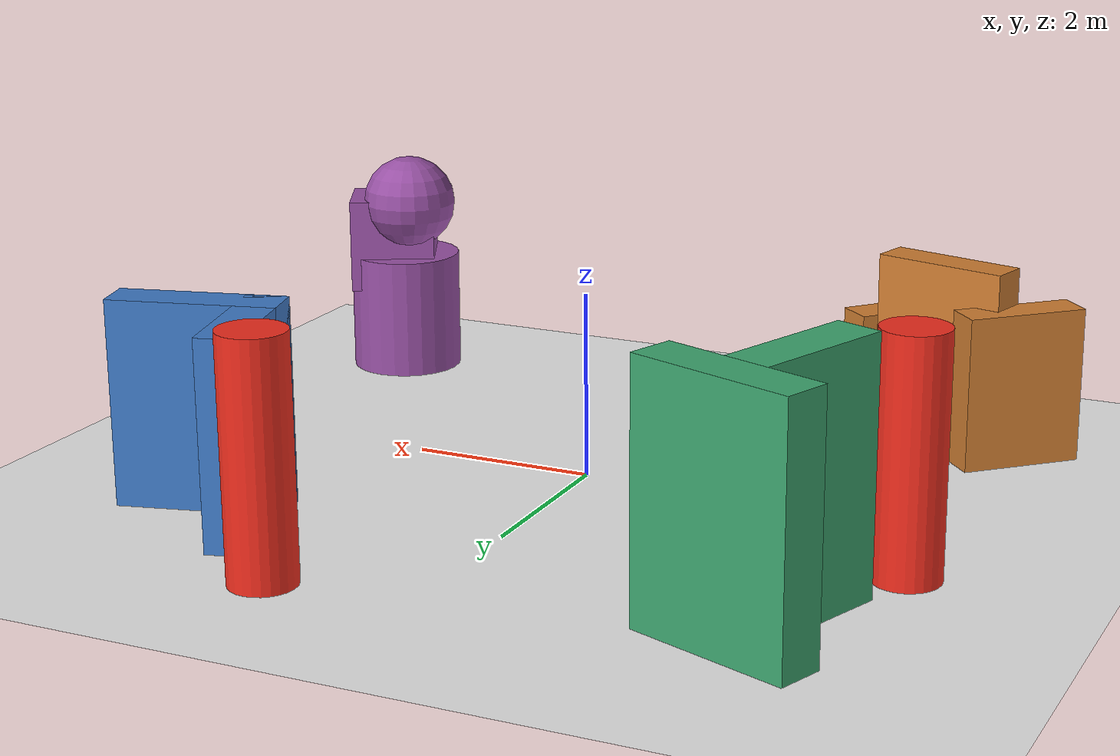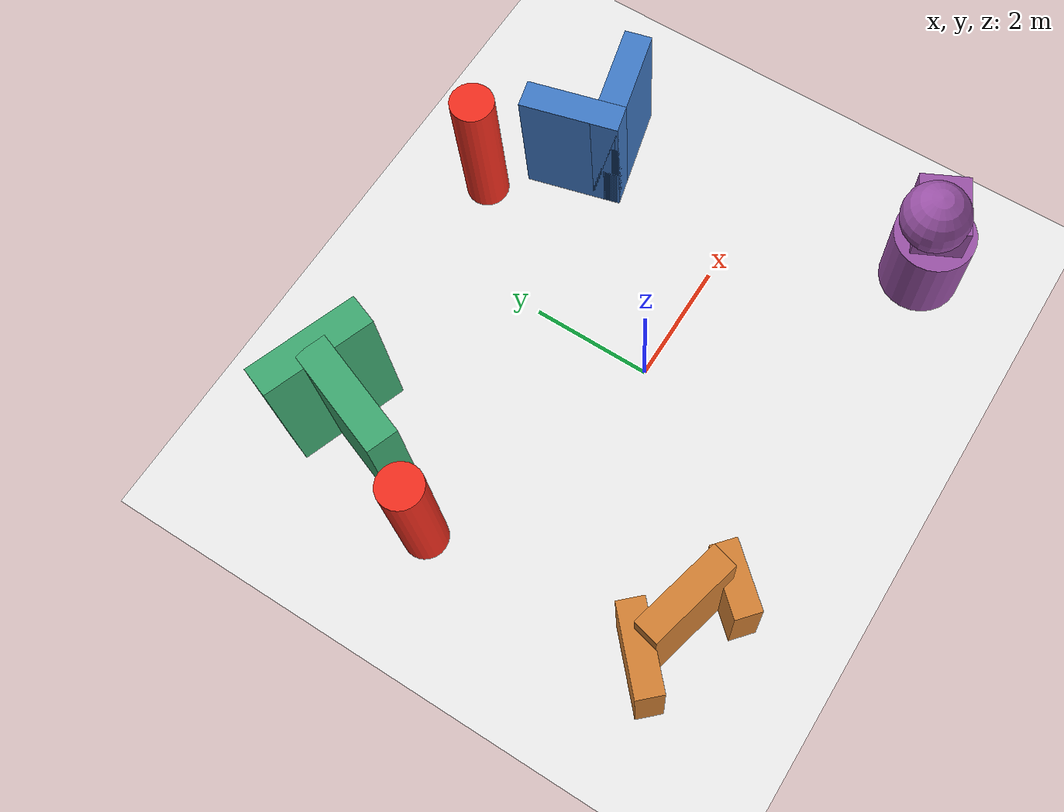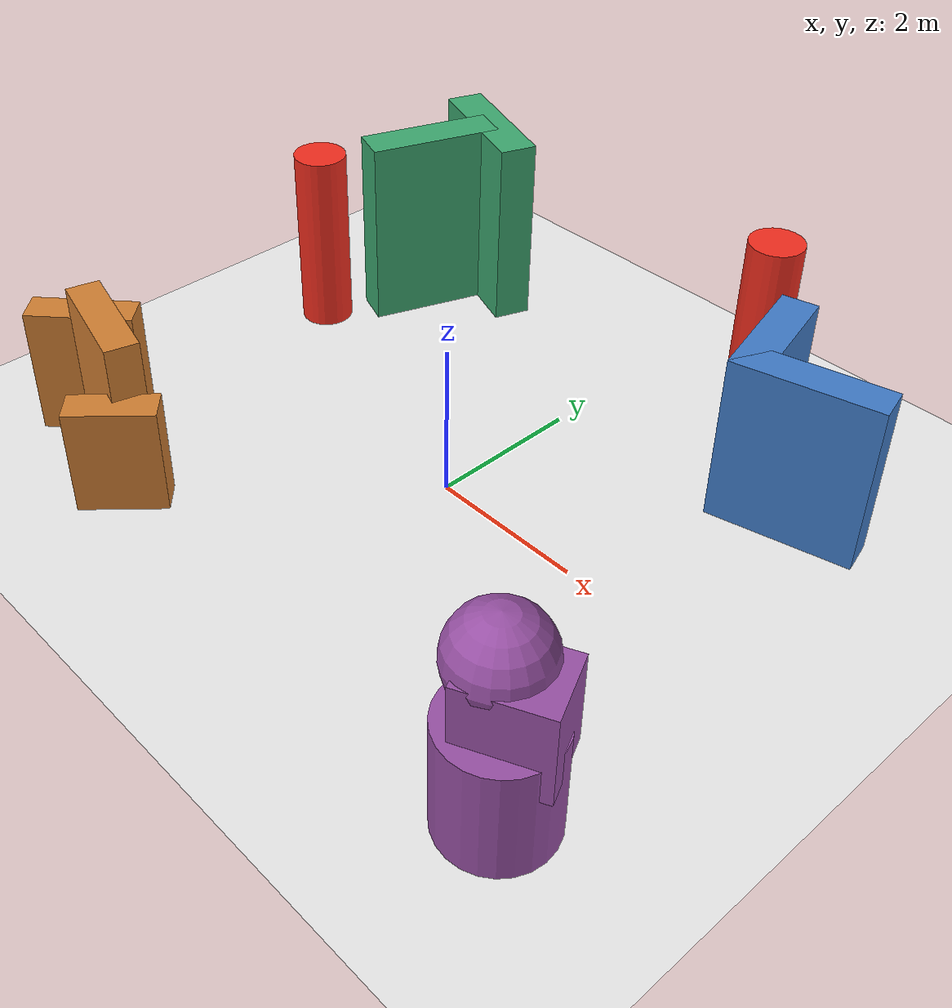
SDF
<?xml version="1.0"?>
<sdf version="1.6">
  <world name="p450_sparse_dynamic_white">
    <gravity>0 0 -9.8</gravity>
    <magnetic_field>6e-06 2.3e-05 -4.2e-05</magnetic_field>
    <atmosphere type="adiabatic"/>

    <physics name="default_physics" type="ode">
      <max_step_size>0.001</max_step_size>
      <real_time_factor>1.0</real_time_factor>
      <real_time_update_rate>1000</real_time_update_rate>
    </physics>

    <scene>
      <ambient>0.75 0.75 0.75 1</ambient>
      <background>0.92 0.95 1.0 1</background>
      <shadows>true</shadows>
    </scene>

    <light name="sun" type="directional">
      <cast_shadows>true</cast_shadows>
      <pose>0 0 12 0 0 0</pose>
      <diffuse>0.9 0.9 0.9 1</diffuse>
      <specular>0.2 0.2 0.2 1</specular>
      <attenuation>
        <range>1000</range>
        <constant>0.9</constant>
        <linear>0.01</linear>
        <quadratic>0.001</quadratic>
      </attenuation>
      <direction>-0.4 0.2 -0.9</direction>
    </light>

    <!-- 纯白图片材质地面，无网格和花纹。 -->
    <include>
      <uri>model://p450_white_ground</uri>
      <name>p450_white_ground</name>
      <pose>0 0 0 0 0 0</pose>
    </include>

    <!-- 四个复合几何体组成的稀疏不规则静态障碍物。 -->
    <include>
      <uri>model://p450_irregular_obstacles</uri>
      <name>p450_irregular_obstacles</name>
      <pose>0 0 0 0 0 0</pose>
    </include>

    <!-- 初始位姿与运动控制节点 t=0 时保持一致。 -->
    <include>
      <uri>model://p450_reciprocating_cylinder</uri>
      <name>dynamic_cylinder_x</name>
      <pose>1.5 4.0 0 0 0 0</pose>
    </include>
    <include>
      <uri>model://p450_reciprocating_cylinder</uri>
      <name>dynamic_cylinder_y</name>
      <pose>-4.0 1.4 0 0 0 0</pose>
    </include>

    <wind/>
    <spherical_coordinates>
      <surface_model>EARTH_WGS84</surface_model>
      <latitude_deg>0</latitude_deg>
      <longitude_deg>0</longitude_deg>
      <elevation>0</elevation>
      <heading_deg>0</heading_deg>
    </spherical_coordinates>

    <gui fullscreen="false">
      <camera name="overview">
        <pose>11 -13 11 0 0.55 2.35</pose>
        <view_controller>orbit</view_controller>
      </camera>
    </gui>
  </world>
</sdf>

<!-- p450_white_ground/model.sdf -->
<sdf version="1.6">
  <model name="p450_white_ground">
    <static>true</static>
    <link name="ground_link">
      <collision name="ground_collision">
        <geometry>
          <plane>
            <normal>0 0 1</normal>
            <size>40 40</size>
          </plane>
        </geometry>
        <surface>
          <contact>
            <collide_bitmask>65535</collide_bitmask>
            <ode/>
          </contact>
          <friction>
            <ode>
              <mu>100</mu>
              <mu2>50</mu2>
            </ode>
          </friction>
        </surface>
      </collision>
      <visual name="ground_visual">
        <cast_shadows>false</cast_shadows>
        <geometry>
          <plane>
            <normal>0 0 1</normal>
            <size>40 40</size>
          </plane>
        </geometry>
        <material>
          <script>
            <uri>model://p450_white_ground/materials/scripts</uri>
            <uri>model://p450_white_ground/materials/textures</uri>
            <name>P450/PlainWhiteGround</name>
          </script>
        </material>
      </visual>
    </link>
  </model>
</sdf>

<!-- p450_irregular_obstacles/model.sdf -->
<sdf version="1.6">
  <model name="p450_irregular_obstacles">
    <static>true</static>

    <!-- 东北侧：L 形高障碍物。 -->
    <link name="l_shape">
      <pose>3.2 2.4 0 0 0 0.25</pose>
      <collision name="long_collision">
        <pose>0 0 1.1 0 0 0</pose>
        <geometry><box><size>1.8 0.45 2.2</size></box></geometry>
      </collision>
      <collision name="short_collision">
        <pose>-0.675 0.575 1.1 0 0 0</pose>
        <geometry><box><size>0.45 1.6 2.2</size></box></geometry>
      </collision>
      <visual name="long_visual">
        <pose>0 0 1.1 0 0 0</pose>
        <geometry><box><size>1.8 0.45 2.2</size></box></geometry>
        <material>
          <ambient>0.20 0.38 0.62 1</ambient>
          <diffuse>0.25 0.48 0.78 1</diffuse>
        </material>
      </visual>
      <visual name="short_visual">
        <pose>-0.675 0.575 1.1 0 0 0</pose>
        <geometry><box><size>0.45 1.6 2.2</size></box></geometry>
        <material>
          <ambient>0.20 0.38 0.62 1</ambient>
          <diffuse>0.25 0.48 0.78 1</diffuse>
        </material>
      </visual>
    </link>

    <!-- 西北侧：旋转的 T 形障碍物。 -->
    <link name="t_shape">
      <pose>-3.2 3.1 0 0 0 -0.35</pose>
      <collision name="stem_collision">
        <pose>0 -0.35 1.3 0 0 0</pose>
        <geometry><box><size>0.5 1.8 2.6</size></box></geometry>
      </collision>
      <collision name="cap_collision">
        <pose>0 0.55 1.3 0 0 0</pose>
        <geometry><box><size>1.8 0.5 2.6</size></box></geometry>
      </collision>
      <visual name="stem_visual">
        <pose>0 -0.35 1.3 0 0 0</pose>
        <geometry><box><size>0.5 1.8 2.6</size></box></geometry>
        <material>
          <ambient>0.20 0.52 0.36 1</ambient>
          <diffuse>0.24 0.66 0.44 1</diffuse>
        </material>
      </visual>
      <visual name="cap_visual">
        <pose>0 0.55 1.3 0 0 0</pose>
        <geometry><box><size>1.8 0.5 2.6</size></box></geometry>
        <material>
          <ambient>0.20 0.52 0.36 1</ambient>
          <diffuse>0.24 0.66 0.44 1</diffuse>
        </material>
      </visual>
    </link>

    <!-- 西南侧：三段高度不同的折线障碍物。 -->
    <link name="zigzag_shape">
      <pose>-3.4 -2.6 0 0 0 0.2</pose>
      <collision name="segment_a_collision">
        <pose>-0.55 0.35 0.85 0 0 0.55</pose>
        <geometry><box><size>1.35 0.42 1.7</size></box></geometry>
      </collision>
      <collision name="segment_b_collision">
        <pose>0.25 0 1.05 0 0 -0.45</pose>
        <geometry><box><size>1.5 0.42 2.1</size></box></geometry>
      </collision>
      <collision name="segment_c_collision">
        <pose>0.85 -0.55 0.7 0 0 0.65</pose>
        <geometry><box><size>1.1 0.42 1.4</size></box></geometry>
      </collision>
      <visual name="segment_a_visual">
        <pose>-0.55 0.35 0.85 0 0 0.55</pose>
        <geometry><box><size>1.35 0.42 1.7</size></box></geometry>
        <material>
          <ambient>0.62 0.38 0.16 1</ambient>
          <diffuse>0.82 0.50 0.20 1</diffuse>
        </material>
      </visual>
      <visual name="segment_b_visual">
        <pose>0.25 0 1.05 0 0 -0.45</pose>
        <geometry><box><size>1.5 0.42 2.1</size></box></geometry>
        <material>
          <ambient>0.62 0.38 0.16 1</ambient>
          <diffuse>0.82 0.50 0.20 1</diffuse>
        </material>
      </visual>
      <visual name="segment_c_visual">
        <pose>0.85 -0.55 0.7 0 0 0.65</pose>
        <geometry><box><size>1.1 0.42 1.4</size></box></geometry>
        <material>
          <ambient>0.62 0.38 0.16 1</ambient>
          <diffuse>0.82 0.50 0.20 1</diffuse>
        </material>
      </visual>
    </link>

    <!-- 东南侧：圆柱、斜方体和球体叠成的不规则障碍物。 -->
    <link name="rock_shape">
      <pose>3.8 -2.9 0 0 0 0</pose>
      <collision name="base_collision">
        <pose>0 0 0.7 0 0 0</pose>
        <geometry><cylinder><radius>0.65</radius><length>1.4</length></cylinder></geometry>
      </collision>
      <collision name="middle_collision">
        <pose>0.12 0.05 1.55 0 0 0.45</pose>
        <geometry><box><size>1.0 0.8 1.1</size></box></geometry>
      </collision>
      <collision name="top_collision">
        <pose>-0.12 0.08 2.05 0 0 0</pose>
        <geometry><sphere><radius>0.55</radius></sphere></geometry>
      </collision>
      <visual name="base_visual">
        <pose>0 0 0.7 0 0 0</pose>
        <geometry><cylinder><radius>0.65</radius><length>1.4</length></cylinder></geometry>
        <material>
          <ambient>0.45 0.24 0.48 1</ambient>
          <diffuse>0.60 0.32 0.65 1</diffuse>
        </material>
      </visual>
      <visual name="middle_visual">
        <pose>0.12 0.05 1.55 0 0 0.45</pose>
        <geometry><box><size>1.0 0.8 1.1</size></box></geometry>
        <material>
          <ambient>0.45 0.24 0.48 1</ambient>
          <diffuse>0.60 0.32 0.65 1</diffuse>
        </material>
      </visual>
      <visual name="top_visual">
        <pose>-0.12 0.08 2.05 0 0 0</pose>
        <geometry><sphere><radius>0.55</radius></sphere></geometry>
        <material>
          <ambient>0.45 0.24 0.48 1</ambient>
          <diffuse>0.60 0.32 0.65 1</diffuse>
        </material>
      </visual>
    </link>
  </model>
</sdf>

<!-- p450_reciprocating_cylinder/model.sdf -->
<sdf version="1.6">
  <model name="p450_reciprocating_cylinder">
    <static>false</static>
    <allow_auto_disable>false</allow_auto_disable>
    <link name="cylinder_link">
      <pose>0 0 1.25 0 0 0</pose>
      <gravity>false</gravity>
      <kinematic>true</kinematic>
      <inertial>
        <mass>12.0</mass>
        <inertia>
          <ixx>6.6175</ixx>
          <ixy>0</ixy>
          <ixz>0</ixz>
          <iyy>6.6175</iyy>
          <iyz>0</iyz>
          <izz>0.735</izz>
        </inertia>
      </inertial>
      <collision name="cylinder_collision">
        <geometry>
          <cylinder>
            <radius>0.35</radius>
            <length>2.5</length>
          </cylinder>
        </geometry>
        <surface>
          <contact><ode/></contact>
          <friction>
            <ode><mu>1.0</mu><mu2>1.0</mu2></ode>
          </friction>
        </surface>
      </collision>
      <visual name="cylinder_visual">
        <geometry>
          <cylinder>
            <radius>0.35</radius>
            <length>2.5</length>
          </cylinder>
        </geometry>
        <material>
          <ambient>0.75 0.12 0.10 1</ambient>
          <diffuse>0.95 0.18 0.12 1</diffuse>
          <specular>0.15 0.15 0.15 1</specular>
        </material>
      </visual>
    </link>
  </model>
</sdf>
